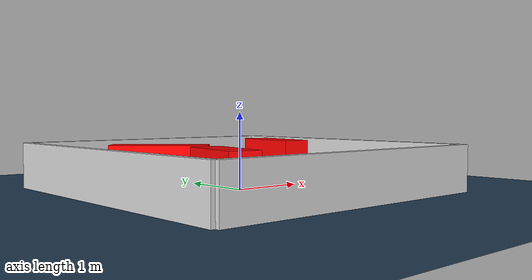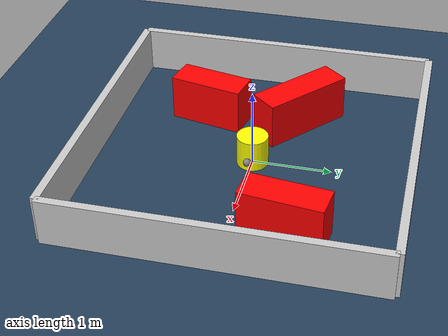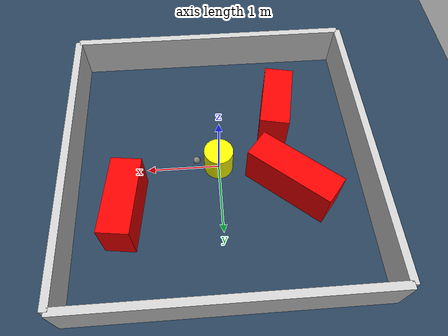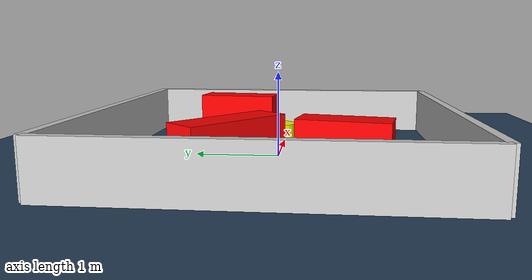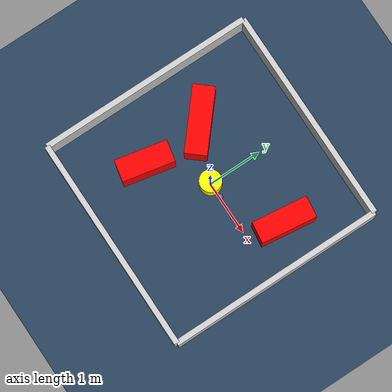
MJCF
<?xml version="1.0" ?>
<mujoco model="generated_environment">
  <option timestep="0.01" integrator="RK4" cone="elliptic"/>
  <default>
    <geom density="1"/>
  </default>
  <asset>
    <texture builtin="gradient" height="3072" rgb1="0.3 0.5 0.7" rgb2="0 0 0" type="skybox" width="512"/>
    <texture builtin="checker" height="300" mark="edge" markrgb="0.8 0.8 0.8" name="groundplane" rgb1="0.2 0.3 0.4" rgb2="0.1 0.2 0.3" type="2d" width="300"/>
    <material name="groundplane" reflectance="0.2" texrepeat="5 5" texture="groundplane" texuniform="true"/>
    <material name="robot" rgba="0.0 1.0 0.0 1"/>
  </asset>
  <worldbody>
    <light dir="0 0 -1" directional="true" pos="0 0 1.5"/>
    <geom condim="4" friction="1.0 0.005 0.001" material="groundplane" name="floor" size="0 0 0.05" type="plane"/>
    <body name="walls">
      <geom name="wall_1" condim="4" pos="-2.0 0.0 0.3" rgba="0.800000011920929 0.800000011920929 0.800000011920929 1.0" size="0.05 2.0 0.3" type="box"/>
      <geom name="wall_2" condim="4" pos="2.0 0.0 0.3" rgba="0.800000011920929 0.800000011920929 0.800000011920929 1.0" size="0.05 2.0 0.3" type="box"/>
      <geom name="wall_3" condim="4" pos="0.0 -2.0 0.3" rgba="0.800000011920929 0.800000011920929 0.800000011920929 1.0" size="2.0 0.05 0.3" type="box"/>
      <geom name="wall_4" condim="4" pos="0.0 2.0 0.3" rgba="0.800000011920929 0.800000011920929 0.800000011920929 1.0" size="2.0 0.05 0.3" type="box"/>
    </body>
    <body name="robot">
      <joint name="joint_x" type="slide" pos="0 0 0" axis="1 0 0"/>
      <joint name="joint_y" type="slide" pos="0 0 0" axis="0 1 0"/>
      <geom name="robot" type="sphere" pos="0.3 0.0 0.2" size="0.05" mass="5." friction="1.0 0.005 0.0001" condim="4" rgba="0.5 0.5 0.5 1.0"/>
      <site name="sensor_ball"/>
    </body>
    <body name="obstacle_movable_1">
      <geom name="obstacle_movable_1" condim="4" pos="0.0 0.0 0.2" euler="0 0 0.0" friction="1.0 0.005 0.001" rgba="1.0 1.0 0.0 1.0" size="0.2 0.2 0.0" type="cylinder" mass="0.1"/>
      <joint type="free"/>
    </body>
    <body name="obstacle_2_static">
      <geom name="obstacle_2_static" condim="4" pos="1.2632219468706896 0.6581504051152332 0.3" euler="0 0 262.69194357561526" friction="1.0 0.005 0.001" rgba="1 0 0 1" size="0.5131779184722594 0.2 0.3" type="box"/>
    </body>
    <body name="obstacle_3_static">
      <geom name="obstacle_3_static" condim="4" pos="-0.8796821227360683 -0.756790234564571 0.3" euler="0 0 78.23672465982766" friction="1.0 0.005 0.001" rgba="1 0 0 1" size="0.48041820071926333 0.2 0.3" type="box"/>
    </body>
    <body name="obstacle_4_static">
      <geom name="obstacle_4_static" condim="4" pos="-0.9533001819221211 0.41421825317531336 0.3" euler="0 0 139.57485721857404" friction="1.0 0.005 0.001" rgba="1 0 0 1" size="0.6056434081014216 0.2 0.3" type="box"/>
    </body>
  </worldbody>
  <actuator>
    <motor name="actuator_x" joint="joint_x" gear="1" ctrlrange="-1 1"/>
    <motor name="actuator_y" joint="joint_y" gear="1" ctrlrange="-1 1"/>
  </actuator>
</mujoco>
